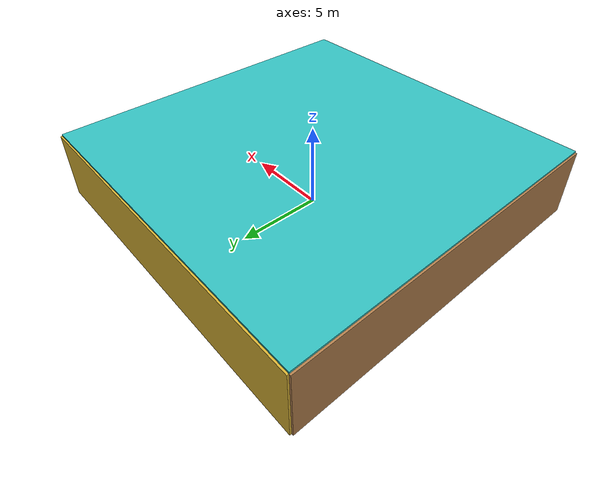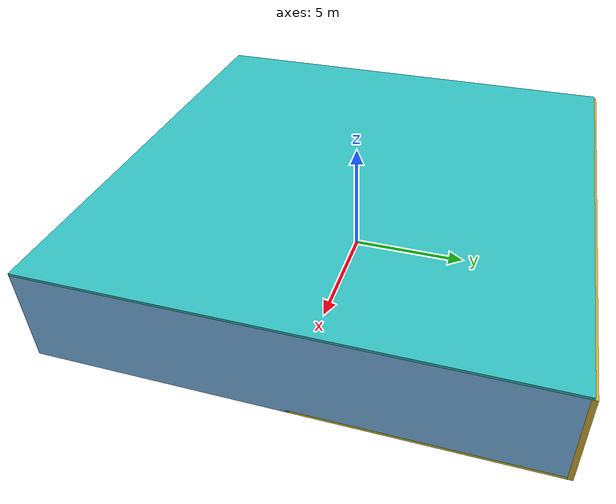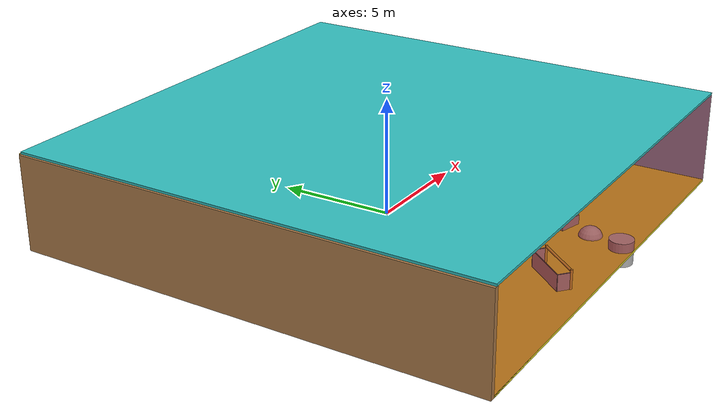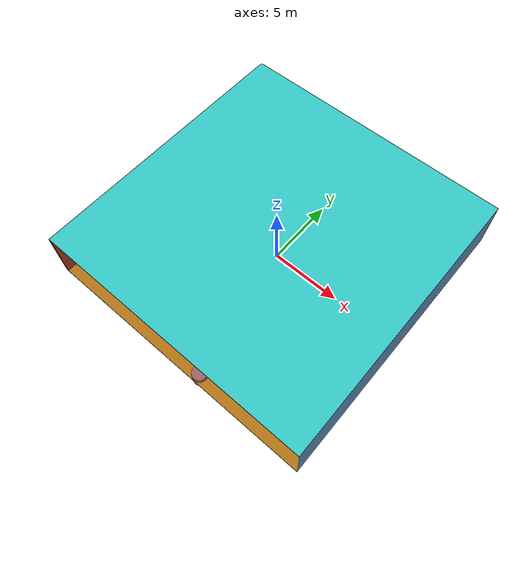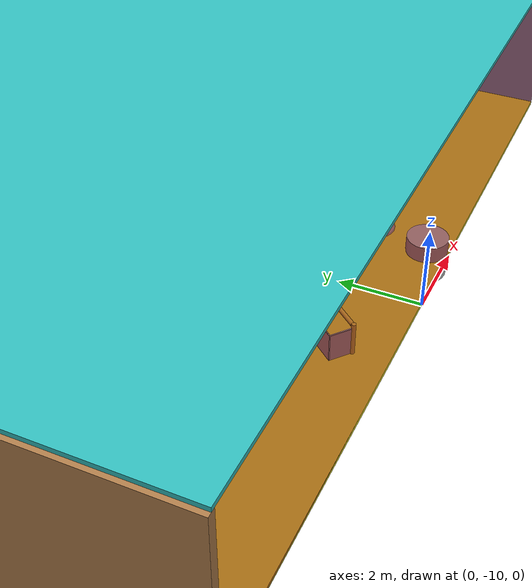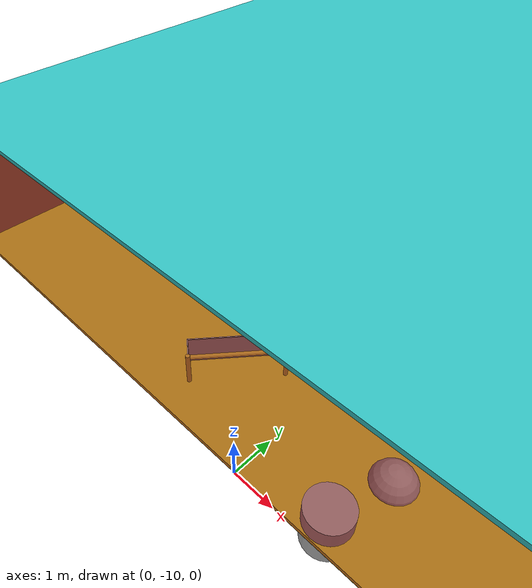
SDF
<sdf version="1.4">
 <world name="default">
  <physics type="ode">
   <max_step_size>0.001</max_step_size>
   <real_time_factor>1</real_time_factor>
   <real_time_update_rate>1000</real_time_update_rate>
   <gravity>0 0 -9.8</gravity>
  </physics>
  <scene><ambient>0.4 0.4 0.4 1</ambient><background>0.7 0.7 0.7 1</background><shadows>1</shadows></scene>
  <model name="Surrounding">
   <static>1</static>
   <link name="Ceiling">
    <collision name="Ceiling_Collision"><geometry><box><size>20 20 0.1</size></box></geometry></collision>
    <visual name="Ceiling_Visual">
     <geometry><box><size>20 20 0.1</size></box></geometry>
     <material>
      <script><uri>file://media/materials/scripts/gazebo.material</uri><name>Gazebo/TurquoiseGlow</name></script>
     </material>
    </visual>
    <pose>0 0 4.05 0 0 0</pose>
   </link>
   <link name="Wall_South">
    <collision name="Wall_South_Collision">
     <geometry><box><size>20 0 4</size></box></geometry>
     <pose>0 0 2 0 -0 0</pose>
    </collision>
    <visual name="Wall_South_Visual">
     <pose>0 0 2 0 -0 0</pose>
     <geometry><box><size>20 0 4</size></box></geometry>
     <material>
      <script><uri>file://media/materials/scripts/gazebo.material</uri><name>Gazebo/RedTransparent</name></script>
     </material>
    </visual>
    <velocity_decay><linear>0</linear><angular>0</angular></velocity_decay>
    <pose>0 -10 0 0 -0 0</pose>
   </link>
   <link name="Wall_East">
    <collision name="Wall_21_Collision">
     <geometry><box><size>20 0 4</size></box></geometry>
     <pose>0 0 2 0 -0 0</pose>
    </collision>
    <visual name="Wall_21_Visual">
     <pose>0 0 2 0 -0 0</pose>
     <geometry><box><size>20 0 4</size></box></geometry>
     <material>
      <script><uri>file://media/materials/scripts/gazebo.material</uri><name>Gazebo/SkyBlue</name></script>
     </material>
    </visual>
    <velocity_decay><linear>0</linear><angular>0</angular></velocity_decay>
    <pose>10 0 0 0 -0 1.5708</pose>
   </link>
   <link name="Wall_North">
    <collision name="Wall_22_Collision">
     <geometry><box><size>20 0.2 4</size></box></geometry>
     <pose>0 0 2 0 -0 0</pose>
    </collision>
    <visual name="Wall_22_Visual">
     <pose>0 0 2 0 -0 0</pose>
     <geometry><box><size>20 0.2 4</size></box></geometry>
     <material>
      <script><uri>file://media/materials/scripts/gazebo.material</uri><name>Gazebo/Gold</name></script>
     </material>
    </visual>
    <velocity_decay><linear>0</linear><angular>0</angular></velocity_decay>
    <pose>0 10 0 0 -0 0</pose>
   </link>
   <link name="Wall_West">
    <collision name="Wall_23_Collision">
     <geometry><box><size>20 0.2 4</size></box></geometry>
     <pose>0 0 2 0 -0 0</pose>
    </collision>
    <visual name="Wall_23_Visual">
     <pose>0 0 2 0 -0 0</pose>
     <geometry><box><size>20 0.2 4</size></box></geometry>
     <material>
      <script><uri>file://media/materials/scripts/gazebo.material</uri><name>Gazebo/Wood</name></script>
     </material>
    </visual>
    <velocity_decay><linear>0</linear><angular>0</angular></velocity_decay>
    <pose>-10 0 0 0 0 -1.5708</pose>
   </link>
   <link name="Ground_link">
    <collision name="collision">
     <pose>0 0 .05 0 -0 0</pose>
     <geometry><box><size>20 20 0.1</size></box></geometry>
    </collision>
    <visual name="visual">
     <pose>0 0 .05 0 -0 0</pose>
     <geometry><box><size>20 20 0.1</size></box></geometry>
     <material>
      <script><uri>file://media/materials/scripts/gazebo.material</uri><name>Gazebo/YellowGlow</name></script>
     </material>
    </visual>
   </link>
   <static>1</static>
  </model>
  <spherical_coordinates>
   <surface_model>EARTH_WGS84</surface_model>
   <latitude_deg>0</latitude_deg>
   <longitude_deg>0</longitude_deg>
   <elevation>0</elevation>
   <heading_deg>0</heading_deg>
  </spherical_coordinates>
  <light name="lightball_0" type="diffuse">
   <diffuse>0.8 0.8 0.8 1</diffuse>
   <specular>0.2 0.2 0.2 1</specular>
   <attenuation>
    <range>100</range>
    <constant>0.7</constant>
    <linear>0.01</linear>
    <quadratic>0.001</quadratic>
   </attenuation>
   <direction>-0.5 0.1 -0.9</direction>
   <pose>-9.86352797043 6.81709847302 3.88504338412 0 0 0</pose>
  </light>
  <light name="lightball_1" type="diffuse">
   <diffuse>0.8 0.8 0.8 1</diffuse>
   <specular>0.2 0.2 0.2 1</specular>
   <attenuation>
    <range>100</range>
    <constant>0.7</constant>
    <linear>0.01</linear>
    <quadratic>0.001</quadratic>
   </attenuation>
   <direction>-0.5 0.1 -0.9</direction>
   <pose>-3.06555031187 -3.78853230546 0.795441649951 0 0 0</pose>
  </light>
  <light name="lightball_2" type="diffuse">
   <diffuse>0.8 0.8 0.8 1</diffuse>
   <specular>0.2 0.2 0.2 1</specular>
   <attenuation>
    <range>100</range>
    <constant>0.7</constant>
    <linear>0.01</linear>
    <quadratic>0.001</quadratic>
   </attenuation>
   <direction>-0.5 0.1 -0.9</direction>
   <pose>-4.88105335277 -3.2821195987 2.17099085539 0 0 0</pose>
  </light>
  <light name="lightball_3" type="diffuse">
   <diffuse>0.8 0.8 0.8 1</diffuse>
   <specular>0.2 0.2 0.2 1</specular>
   <attenuation>
    <range>100</range>
    <constant>0.7</constant>
    <linear>0.01</linear>
    <quadratic>0.001</quadratic>
   </attenuation>
   <direction>-0.5 0.1 -0.9</direction>
   <pose>-6.8909079249 6.45714371778 3.34050028377 0 0 0</pose>
  </light>
  <light name="lightball_4" type="diffuse">
   <diffuse>0.8 0.8 0.8 1</diffuse>
   <specular>0.2 0.2 0.2 1</specular>
   <attenuation>
    <range>100</range>
    <constant>0.7</constant>
    <linear>0.01</linear>
    <quadratic>0.001</quadratic>
   </attenuation>
   <direction>-0.5 0.1 -0.9</direction>
   <pose>-0.156987189842 -8.61153609095 2.93603162861 0 0 0</pose>
  </light>
  <light name="lightball_5" type="diffuse">
   <diffuse>0.8 0.8 0.8 1</diffuse>
   <specular>0.2 0.2 0.2 1</specular>
   <attenuation>
    <range>100</range>
    <constant>0.7</constant>
    <linear>0.01</linear>
    <quadratic>0.001</quadratic>
   </attenuation>
   <direction>-0.5 0.1 -0.9</direction>
   <pose>-1.26251686973 7.36987091258 3.7838089941 0 0 0</pose>
  </light>
  <light name="lightball_6" type="diffuse">
   <diffuse>0.8 0.8 0.8 1</diffuse>
   <specular>0.2 0.2 0.2 1</specular>
   <attenuation>
    <range>100</range>
    <constant>0.7</constant>
    <linear>0.01</linear>
    <quadratic>0.001</quadratic>
   </attenuation>
   <direction>-0.5 0.1 -0.9</direction>
   <pose>5.94956227886 3.65234759312 0.821495980043 0 0 0</pose>
  </light>
  <light name="lightball_7" type="diffuse">
   <diffuse>0.8 0.8 0.8 1</diffuse>
   <specular>0.2 0.2 0.2 1</specular>
   <attenuation>
    <range>100</range>
    <constant>0.7</constant>
    <linear>0.01</linear>
    <quadratic>0.001</quadratic>
   </attenuation>
   <direction>-0.5 0.1 -0.9</direction>
   <pose>-8.61408752694 -2.89602222868 0.927552710516 0 0 0</pose>
  </light>
  <light name="lightball_8" type="diffuse">
   <diffuse>0.8 0.8 0.8 1</diffuse>
   <specular>0.2 0.2 0.2 1</specular>
   <attenuation>
    <range>100</range>
    <constant>0.7</constant>
    <linear>0.01</linear>
    <quadratic>0.001</quadratic>
   </attenuation>
   <direction>-0.5 0.1 -0.9</direction>
   <pose>1.18107374403 7.20552473637 0.701205197366 0 0 0</pose>
  </light>
  <include><uri>model://cabinet</uri><pose>-6.99672106444 6.33037609164 0 0 0 1.6281579321</pose></include>
  <include><uri>model://cabinet</uri><pose>-3.84063347217 6.92092779642 0 0 0 2.02458631281</pose></include>
  <include>
   <uri>model://robocup_3Dsim_goal</uri>
   <pose>-1.55830201939 -8.37317902312 0 0 0 2.45156385057</pose>
  </include>
  <include>
   <uri>model://textured_shapes</uri>
   <pose>2.27202344526 -8.03751911954 0 0 0 2.86785214484</pose>
  </include>
  <include>
   <uri>model://textured_shapes</uri>
   <pose>5.31446193012 -2.03623889587 0 0 0 2.92782503635</pose>
  </include>
 </world>
</sdf>

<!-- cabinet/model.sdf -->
<sdf version="1.5">
  <model name="cabinet">
    <static>true</static>
    <link name="cabinet_bottom_plate">
      <inertial>
        <pose>0 0 -1 0 0 0</pose>
        <inertia>
          <ixx>2.050000</ixx>
          <ixy>0</ixy>
          <ixz>0</ixz>
          <iyy>2.050000</iyy>
          <iyz>0</iyz>
          <izz>2.050000</izz>
        </inertia>
        <mass>25.000000</mass>
      </inertial>
      <collision name="cabinet_bottom_plate_geom">
        <pose>0 0 0.010000 0 0 0</pose>
        <geometry>
          <box>
            <size>0.450000 0.450000 0.020000</size>
          </box>
        </geometry>
      </collision>
      <visual name="cabinet_bottom_plate_geom_visual">
        <pose>0 0 0.010000 0 0 0</pose>
        <geometry>
          <box>
            <size>0.450000 0.450000 0.020000</size>
          </box>
        </geometry>
        <material>
          <script>
            <uri>model://media/materials/scripts/gazebo.material</uri>
            <name>Gazebo/Wood</name>
          </script>
        </material>
      </visual>
      <collision name="cabinet_bottom_plate_geom_cabinet_back_plate">
        <pose>0.235000 0 0.510000 0 0 0</pose>
        <geometry>
          <box>
            <size>0.020000 0.450000 1.020000</size>
          </box>
        </geometry>
      </collision>
      <visual name="cabinet_bottom_plate_geom_cabinet_back_plate_visual">
        <pose>0.235000 0 0.510000 0 0 0</pose>
        <geometry>
          <box>
            <size>0.020000 0.450000 1.020000</size>
          </box>
        </geometry>
        <material>
          <script>
            <uri>model://media/materials/scripts/gazebo.material</uri>
            <name>Gazebo/Wood</name>
          </script>
        </material>
      </visual>
      <collision name="cabinet_bottom_plate_geom_cabinet_left_plate">
        <pose>0 0.235000 0.510000 0 0 0</pose>
        <geometry>
          <box>
            <size>0.450000 0.020000 1.020000</size>
          </box>
        </geometry>
      </collision>
      <visual name="cabinet_bottom_plate_geom_cabinet_left_plate_visual">
        <pose>0 0.235000 0.510000 0 0 0</pose>
        <geometry>
          <box>
            <size>0.450000 0.020000 1.020000</size>
          </box>
        </geometry>
        <material>
          <script>
            <uri>model://media/materials/scripts/gazebo.material</uri>
            <name>Gazebo/Wood</name>
          </script>
        </material>
      </visual>
      <collision name="cabinet_bottom_plate_geom_cabinet_middle_plate">
        <pose>0 0 0.510000 0 0 0</pose>
        <geometry>
          <box>
            <size>0.450000 0.450000 0.020000</size>
          </box>
        </geometry>
      </collision>
      <visual name="cabinet_bottom_plate_geom_cabinet_middle_plate_visual">
        <pose>0 0 0.510000 0 0 0</pose>
        <geometry>
          <box>
            <size>0.450000 0.450000 0.020000</size>
          </box>
        </geometry>
        <material>
          <script>
            <uri>model://media/materials/scripts/gazebo.material</uri>
            <name>Gazebo/Wood</name>
          </script>
        </material>
      </visual>
      <collision name="cabinet_bottom_plate_geom_cabinet_right_plate">
        <pose>0 -0.235000 0.510000 0 0 0</pose>
        <geometry>
          <box>
            <size>0.450000 0.020000 1.020000</size>
          </box>
        </geometry>
      </collision>
      <visual name="cabinet_bottom_plate_geom_cabinet_right_plate_visual">
        <pose>0 -0.235000 0.510000 0 0 0</pose>
        <geometry>
          <box>
            <size>0.450000 0.020000 1.020000</size>
          </box>
        </geometry>
        <material>
          <script>
            <uri>model://media/materials/scripts/gazebo.material</uri>
            <name>Gazebo/Wood</name>
          </script>
        </material>
      </visual>
      <collision name="cabinet_bottom_plate_geom_cabinet_top_plate">
        <pose>0 0 1.010000 0 0 0</pose>
        <geometry>
          <box>
            <size>0.450000 0.450000 0.020000</size>
          </box>
        </geometry>
      </collision>
      <visual name="cabinet_bottom_plate_geom_cabinet_top_plate_visual">
        <pose>0 0 1.010000 0 0 0</pose>
        <geometry>
          <box>
            <size>0.450000 0.450000 0.020000</size>
          </box>
        </geometry>
        <material>
          <script>
            <uri>model://media/materials/scripts/gazebo.material</uri>
            <name>Gazebo/Wood</name>
          </script>
        </material>
      </visual>
    </link>
  </model>
</sdf>

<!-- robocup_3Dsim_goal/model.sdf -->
<sdf version="1.5">
  <model name="robocup_3d_goal">
    <static>true</static>
    <link name="left_post">
      <pose>0 1.05 0.45 0 0 0</pose>
      <collision name="collision">
        <geometry>
          <cylinder>
            <radius>0.05</radius>
            <length>0.9</length>
          </cylinder>
        </geometry>
      </collision>
      <visual name="visual">
        <geometry>
          <cylinder>
            <radius>0.05</radius>
            <length>0.9</length>
          </cylinder>
        </geometry>
        <material>
          <script>
            <uri>file://media/materials/scripts/gazebo.material</uri>
            <name>Gazebo/ZincYellow</name>
          </script>
        </material>
      </visual>
    </link>
    <link name="left_support_horiz_lower">
      <pose>0.30 1.05 0.01 0 0 0</pose>
      <collision name="collision">
        <geometry>
          <box>
            <size>0.50 0.02 0.02</size>
          </box>
        </geometry>
      </collision>
      <visual name="visual">
        <geometry>
          <box>
            <size>0.50 0.02 0.02</size>
          </box>
        </geometry>
        <material>
          <script>
            <uri>file://media/materials/scripts/gazebo.material</uri>
            <name>Gazebo/White</name>
          </script>
        </material>
      </visual>
    </link>
    <link name="left_support_horiz_upper">
      <pose>0.30 1.05 0.79 0 0 0</pose>
      <collision name="collision">
        <geometry>
          <box>
            <size>0.50 0.02 0.02</size>
          </box>
        </geometry>
      </collision>
      <visual name="visual">
        <geometry>
          <box>
            <size>0.50 0.02 0.02</size>
          </box>
        </geometry>
        <material>
          <script>
            <uri>file://media/materials/scripts/gazebo.material</uri>
            <name>Gazebo/White</name>
          </script>
        </material>
      </visual>
    </link>
    <link name="left_support_vertical">
      <pose>0.56 1.05 0.4 0 1.5708 0</pose>
      <collision name="collision">
        <geometry>
          <box>
            <size>0.80 0.02 0.02</size>
          </box>
        </geometry>
      </collision>
      <visual name="visual">
        <geometry>
          <box>
            <size>0.80 0.02 0.02</size>
          </box>
        </geometry>
        <material>
          <script>
            <uri>file://media/materials/scripts/gazebo.material</uri>
            <name>Gazebo/White</name>
          </script>
        </material>
      </visual>
    </link>
    <link name="right_support_horiz_lower">
      <pose>0.30 -1.05 0.01 0 0 0</pose>
      <collision name="collision">
        <geometry>
          <box>
            <size>0.50 0.02 0.02</size>
          </box>
        </geometry>
      </collision>
      <visual name="visual">
        <geometry>
          <box>
            <size>0.50 0.02 0.02</size>
          </box>
        </geometry>
        <material>
          <script>
            <uri>file://media/materials/scripts/gazebo.material</uri>
            <name>Gazebo/White</name>
          </script>
        </material>
      </visual>
    </link>
    <link name="right_support_horiz_upper">
      <pose>0.30 -1.05 0.79 0 0 0</pose>
      <collision name="collision">
        <geometry>
          <box>
            <size>0.50 0.02 0.02</size>
          </box>
        </geometry>
      </collision>
      <visual name="visual">
        <geometry>
          <box>
            <size>0.50 0.02 0.02</size>
          </box>
        </geometry>
        <material>
          <script>
            <uri>file://media/materials/scripts/gazebo.material</uri>
            <name>Gazebo/White</name>
          </script>
        </material>
      </visual>
    </link>
    <link name="right_support_vertical">
      <pose>0.56 -1.05 0.4 0 1.5708 0</pose>
      <collision name="collision">
        <geometry>
          <box>
            <size>0.80 0.02 0.02</size>
          </box>
        </geometry>
      </collision>
      <visual name="visual">
        <geometry>
          <box>
            <size>0.80 0.02 0.02</size>
          </box>
        </geometry>
        <material>
          <script>
            <uri>file://media/materials/scripts/gazebo.material</uri>
            <name>Gazebo/White</name>
          </script>
        </material>
      </visual>
    </link>
    <link name="center_support_horiz_lower">
      <pose>0.56 0 0.01 0 1.5708 0</pose>
      <collision name="collision">
        <geometry>
          <box>
            <size>0.02 2.08 0.02</size>
          </box>
        </geometry>
      </collision>
      <visual name="visual">
        <geometry>
          <box>
            <size>0.02 2.08 0.02</size>
          </box>
        </geometry>
        <material>
          <script>
            <uri>file://media/materials/scripts/gazebo.material</uri>
            <name>Gazebo/White</name>
          </script>
        </material>
      </visual>
    </link>
    <link name="center_support_horiz_upper">
      <pose>0.56 0 0.79 0 1.5708 0</pose>
      <collision name="collision">
        <geometry>
          <box>
            <size>0.02 2.08 0.02</size>
          </box>
        </geometry>
      </collision>
      <visual name="visual">
        <geometry>
          <box>
            <size>0.02 2.08 0.02</size>
          </box>
        </geometry>
        <material>
          <script>
            <uri>file://media/materials/scripts/gazebo.material</uri>
            <name>Gazebo/White</name>
          </script>
        </material>
      </visual>
    </link>
    <link name="right_post">
      <pose>0 -1.05 0.45 0 0 0</pose>
      <collision name="collision">
        <geometry>
          <cylinder>
            <radius>0.05</radius>
            <length>0.9</length>
          </cylinder>
        </geometry>
      </collision>
      <visual name="visual">
        <geometry>
          <cylinder>
            <radius>0.05</radius>
            <length>0.9</length>
          </cylinder>
        </geometry>
        <material>
          <script>
            <uri>file://media/materials/scripts/gazebo.material</uri>
            <name>Gazebo/ZincYellow</name>
          </script>
        </material>
      </visual>
    </link>
    <link name="crossbar">
      <pose>0 0 0.85 1.57 1.57 0</pose>
      <collision name="collision">
        <geometry>
          <cylinder>
            <radius>0.05</radius>
            <length>2.0</length>
          </cylinder>
        </geometry>
      </collision>
      <visual name="visual">
        <geometry>
          <cylinder>
            <radius>0.05</radius>
            <length>2.0</length>
          </cylinder>
        </geometry>
        <material>
          <script>
            <uri>file://media/materials/scripts/gazebo.material</uri>
            <name>Gazebo/ZincYellow</name>
          </script>
        </material>
      </visual>
    </link>
    <link name="center_net">
      <pose>0.56 0 0.40 0 0 0</pose>
      <collision name="collision">
        <geometry>
          <box>
            <size>0.01 2.1 0.80</size>
          </box>
        </geometry>
      </collision>
      <visual name="visual">
        <geometry>
          <box>
            <size>0.01 2.1 0.80</size>
          </box>
        </geometry>
        <material>
          <script>
            <uri>model://../model_source/models/robocup09_spl_field/materials/scripts/</uri>
            <uri>model://../model_source/models/robocup09_spl_field/materials/textures/</uri>
            <name>RoboCup/Net</name>
          </script>
        </material>
      </visual>
    </link>
    <link name="left_net">
      <pose>0.30 1.05 0.40 0 0 0</pose>
      <collision name="collision">
        <geometry>
          <box>
            <size>0.50 0.01 0.76</size>
          </box>
        </geometry>
      </collision>
      <visual name="visual">
        <geometry>
          <box>
            <size>0.50 0.01 0.76</size>
          </box>
        </geometry>
        <material>
          <script>
            <uri>model://../model_source/models/robocup09_spl_field/materials/scripts/</uri>
            <uri>model://../model_source/models/robocup09_spl_field/materials/textures/</uri>
            <name>RoboCup/Net</name>
          </script>
        </material>
      </visual>
    </link>
    <link name="right_net">
      <pose>0.30 -1.05 0.40 0 0 0</pose>
      <collision name="collision">
        <geometry>
          <box>
            <size>0.50 0.01 0.76</size>
          </box>
        </geometry>
      </collision>
      <visual name="visual">
        <geometry>
          <box>
            <size>0.50 0.01 0.76</size>
          </box>
        </geometry>
        <material>
          <script>
            <uri>model://../model_source/models/robocup09_spl_field/materials/scripts/</uri>
            <uri>model://../model_source/models/robocup09_spl_field/materials/textures/</uri>
            <name>RoboCup/Net</name>
          </script>
        </material>
      </visual>
    </link>
  </model>
</sdf>

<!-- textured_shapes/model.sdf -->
<sdf version="1.6">
  <model name="textured_shapes">
    <pose>0 0 0.5 0 0 0</pose>
    <link name="box">
      <pose>0 -1.5 0 0 0 0</pose>
      <collision name="collision">
        <geometry>
          <box>
            <size>1 1 1</size>
          </box>
        </geometry>
      </collision>
      <visual name="visual">
        <geometry>
          <box>
            <size>1 1 1</size>
          </box>
        </geometry>
        <material>
          <script>
            <uri>model://../model_source/models/textured_shapes/materials/scripts</uri>
            <uri>model://../model_source/models/textured_shapes/materials/textures</uri>
            <name>TexturedShape/Squares</name>
          </script>
        </material>
      </visual>
    </link>
    <link name="sphere">
      <collision name="collision">
        <geometry>
          <sphere>
            <radius>0.5</radius>
          </sphere>
        </geometry>
      </collision>
      <visual name="visual">
        <geometry>
          <sphere>
            <radius>0.5</radius>
          </sphere>
        </geometry>
        <material>
          <script>
            <uri>model://../model_source/models/textured_shapes/materials/scripts</uri>
            <uri>model://../model_source/models/textured_shapes/materials/textures</uri>
            <name>TexturedShape/Squares</name>
          </script>
        </material>
      </visual>
    </link>
    <link name="cylinder">
      <pose>0 1.5 0 0 0 0</pose>
      <collision name="collision">
        <geometry>
          <cylinder>
            <radius>0.5</radius>
            <length>1</length>
          </cylinder>
        </geometry>
      </collision>
      <visual name="visual">
        <geometry>
          <cylinder>
            <radius>0.5</radius>
            <length>1</length>
          </cylinder>
        </geometry>
        <material>
          <script>
            <uri>model://../model_source/models/textured_shapes/materials/scripts</uri>
            <uri>model://../model_source/models/textured_shapes/materials/textures</uri>
            <name>TexturedShape/Squares</name>
          </script>
        </material>
      </visual>
    </link>
  </model>
</sdf>
